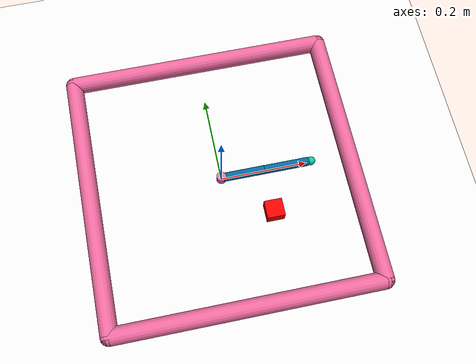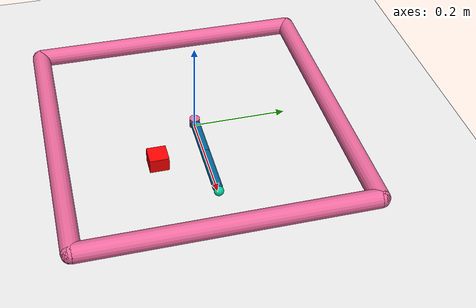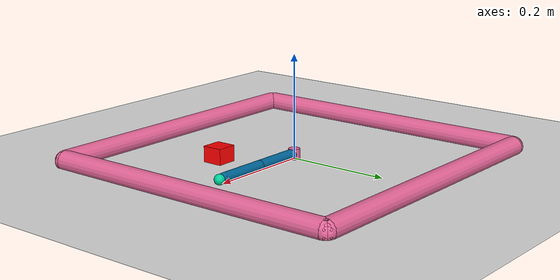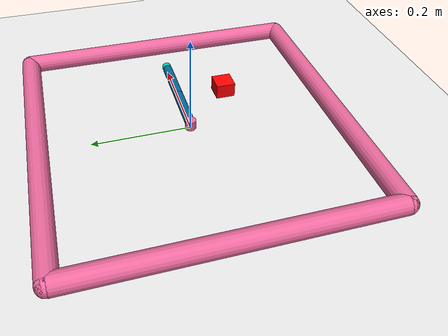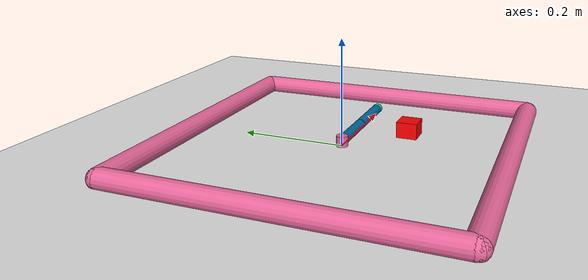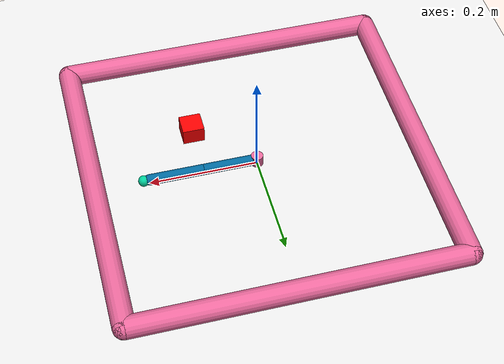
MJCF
<mujoco model="reacher">
	<compiler angle="radian" inertiafromgeom="true"/>
	<default>
		<joint armature="1" damping="1" limited="true"/>
		<geom contype="1" conaffinity="1" friction="1 0.1 0.1" rgba="0.7 0.7 0 1"/>
	</default>
	<option gravity="0 0 -9.81" integrator="RK4" timestep="0.01"/>

	<!-- Visual settings for better rendering -->
	<visual>
		<global offwidth="640" offheight="640"/>
		<quality shadowsize="4096"/>
	</visual>

	<worldbody>
		<!-- Arena -->
		<geom conaffinity="0" contype="0" name="ground" pos="0 0 0" rgba="0.9 0.9 0.9 1" size="1 1 10" type="plane"/>
		<geom conaffinity="0" fromto="-.3 -.3 .01 .3 -.3 .01" name="sideS" rgba="0.9 0.4 0.6 1" size=".02" type="capsule"/>
		<geom conaffinity="0" fromto=" .3 -.3 .01 .3  .3 .01" name="sideE" rgba="0.9 0.4 0.6 1" size=".02" type="capsule"/>
		<geom conaffinity="0" fromto="-.3  .3 .01 .3  .3 .01" name="sideN" rgba="0.9 0.4 0.6 1" size=".02" type="capsule"/>
		<geom conaffinity="0" fromto="-.3 -.3 .01 -.3 .3 .01" name="sideW" rgba="0.9 0.4 0.6 1" size=".02" type="capsule"/>

		<!-- Arm -->
		<geom conaffinity="0" contype="0" fromto="0 0 0 0 0 0.02" name="root" rgba="0.9 0.4 0.6 1" size=".011" type="cylinder"/>
		<body name="body0" pos="0 0 .01">
			<!-- Link0: collision group 1 (arm links) -->
			<geom fromto="0 0 0 0.1 0 0" name="link0" rgba="0.0 0.4 0.6 1" size=".01" type="capsule" contype="1" conaffinity="4"/>
			<joint axis="0 0 1" limited="false" name="joint0" pos="0 0 0" type="hinge"/>
			<body name="body1" pos="0.1 0 0">
				<joint axis="0 0 1" limited="true" name="joint1" pos="0 0 0" range="-3.0 3.0" type="hinge"/>
				<!-- Link1: collision group 1 (arm links) -->
				<geom fromto="0 0 0 0.1 0 0" name="link1" rgba="0.0 0.4 0.6 1" size=".01" type="capsule" contype="1" conaffinity="4"/>
				<body name="fingertip" pos="0.11 0 0">
					<!-- Fingertip: collision group 2 (end effector, allowed to touch target) -->
					<geom contype="2" conaffinity="4" name="fingertip" pos="0 0 0" rgba="0.0 0.8 0.6 1" size=".01" type="sphere"/>
				</body>
			</body>
		</body>

		<!-- Target RED BOX (modified from sphere to box, pure red color) -->
		<body name="target" pos=".1 -.1 .01">
			<joint armature="0" axis="1 0 0" damping="0" limited="true" name="target_x" pos="0 0 0" range="-.27 .27" ref=".1" stiffness="0" type="slide"/>
			<joint armature="0" axis="0 1 0" damping="0" limited="true" name="target_y" pos="0 0 0" range="-.27 .27" ref="-.1" stiffness="0" type="slide"/>
			<!-- Target: collision group 4 (can collide with arm links group 1 and fingertip group 2) -->
			<geom conaffinity="3" contype="4" name="target" pos="0 0 0" rgba="1.0 0.0 0.0 1.0" size=".02 .02 .02" type="box"/>
		</body>

		<!-- Top-down camera for YOLO detection -->
		<camera name="top_view" pos="0 0 1.5" quat="1 0 0 0" fovy="45"/>
	</worldbody>

	<!-- Actuators (IDENTICAL to original) -->
	<actuator>
		<motor ctrllimited="true" ctrlrange="-1.0 1.0" gear="200.0" joint="joint0"/>
		<motor ctrllimited="true" ctrlrange="-1.0 1.0" gear="200.0" joint="joint1"/>
	</actuator>
</mujoco>
